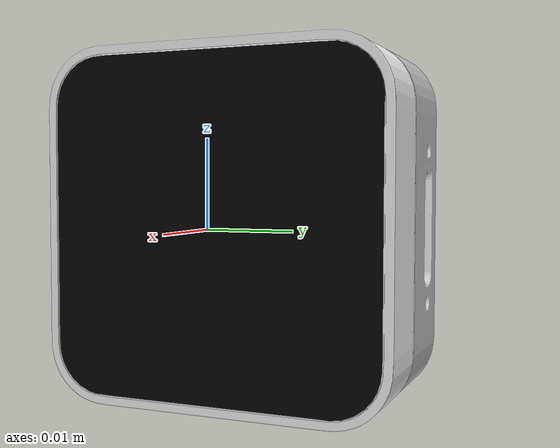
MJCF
<mujoco model="d405">
  <default>
    <default class="visual">
      <geom group="2" type="mesh" contype="0" conaffinity="0"/>
    </default>
    <default class="collision">
      <geom group="3" type="mesh"/>
    </default>
  </default>
  <asset>
    <material name="black_mirror" specular="0.5" shininess="0.25" rgba="0.000000 0.000000 0.000000 0.951220"/>
    <material name="white_metal.005" specular="0.5" shininess="0.25" rgba="0.800000 0.800000 0.800000 1.000000"/>
    <material name="white_metal.006" specular="0.5" shininess="0.351273102" rgba="1.000000 1.000000 1.000000 1.000000"/>
    <mesh file="d405_0.obj"/>
    <mesh file="d405_1.obj"/>
    <mesh file="d405_2.obj"/>
    <mesh file="d405_collision_0.obj"/>
    <mesh file="d405_collision_1.obj"/>
  </asset>
  <worldbody>
    <body name="d405">
      <geom mesh="d405_0" material="black_mirror" class="visual"/>
      <geom mesh="d405_1" material="white_metal.006" class="visual"/>
      <geom mesh="d405_2" material="white_metal.005" class="visual"/>
      <geom mesh="d405_collision_0" rgba="0.6454932769746673 0.6078696046776789 0.560753403189031 1" class="collision"/>
      <geom mesh="d405_collision_1" rgba="0.9242762217217766 0.5352353091593082 0.2779211281953773 1" class="collision"/>
    </body>
  </worldbody>
</mujoco>
